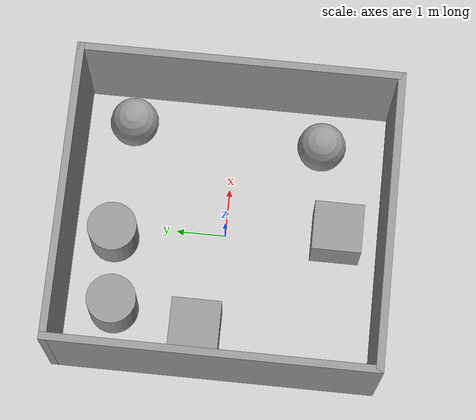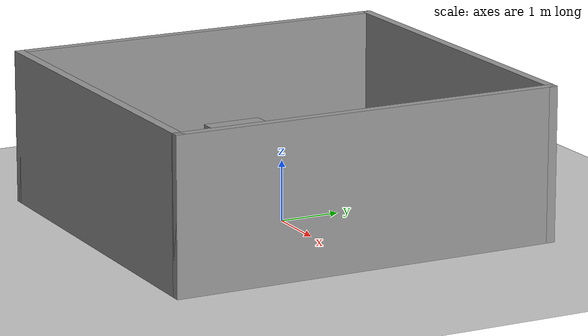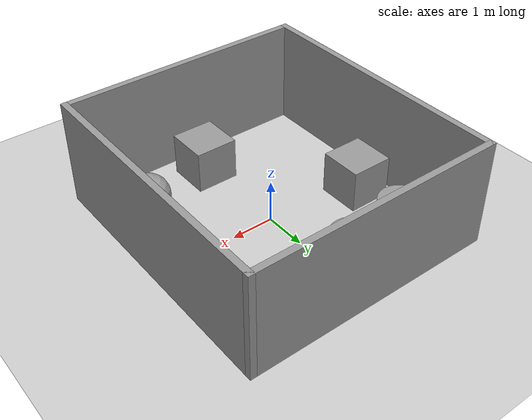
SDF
<sdf version="1.7">
 <world name="default">
  <light name="sun" type="directional">
   <pose>0 0 10 0 -0 0</pose>
   <diffuse>0.8 0.8 0.8 1</diffuse>
   <specular>0.2 0.2 0.2 1</specular>
   <attenuation>
    <range>1000</range>
    <constant>0.9</constant>
    <linear>0.01</linear>
    <quadratic>0.001</quadratic>
   </attenuation>
   <direction>-0.5 0.1 -0.9</direction>
   <spot><inner_angle>0</inner_angle><outer_angle>0</outer_angle><falloff>0</falloff></spot>
  </light>
  <model name="ground_plane">
   <static>1</static>
   <link name="link">
    <collision name="collision">
     <geometry><plane><normal>0 0 1</normal><size>100 100</size></plane></geometry>
     <surface>
      <contact><collide_bitmask>65535</collide_bitmask></contact>
      <friction><ode><mu>100</mu><mu2>50</mu2></ode></friction>
     </surface>
    </collision>
    <visual name="visual">
     <cast_shadows>0</cast_shadows>
     <geometry><plane><normal>0 0 1</normal><size>100 100</size></plane></geometry>
     <material>
      <script><uri>file://media/materials/scripts/gazebo.material</uri><name>Gazebo/Grey</name></script>
     </material>
    </visual>
   </link>
  </model>
  <gravity>0 0 -9.8</gravity>
  <magnetic_field>6e-06 2.3e-05 -4.2e-05</magnetic_field>
  <atmosphere type="adiabatic"/>
  <physics type="ode">
   <max_step_size>0.001</max_step_size>
   <real_time_factor>1</real_time_factor>
   <real_time_update_rate>1000</real_time_update_rate>
  </physics>
  <scene><ambient>0.4 0.4 0.4 1</ambient><background>0.7 0.7 0.7 1</background><shadows>1</shadows></scene>
  <spherical_coordinates>
   <surface_model>EARTH_WGS84</surface_model>
   <latitude_deg>0</latitude_deg>
   <longitude_deg>0</longitude_deg>
   <elevation>0</elevation>
   <heading_deg>0</heading_deg>
  </spherical_coordinates>
  <model name="wall_6m">
   <pose>-0.009013 -0.023796 0 0 -0 0</pose>
   <link name="Wall_0">
    <collision name="Wall_0_Collision">
     <geometry><box><size>6 0.15 2.5</size></box></geometry>
     <pose>0 0 1.25 0 -0 0</pose>
    </collision>
    <visual name="Wall_0_Visual">
     <pose>0 0 1.25 0 -0 0</pose>
     <geometry><box><size>6 0.15 2.5</size></box></geometry>
     <material>
      <script><uri>file://media/materials/scripts/gazebo.material</uri><name>Gazebo/Grey</name></script>
      <ambient>1 1 1 1</ambient>
     </material>
     <meta><layer>0</layer></meta>
    </visual>
    <pose>0 -3.175 0 0 -0 0</pose>
   </link>
   <link name="Wall_1">
    <collision name="Wall_1_Collision">
     <geometry><box><size>6.5 0.15 2.5</size></box></geometry>
     <pose>0 0 1.25 0 -0 0</pose>
    </collision>
    <visual name="Wall_1_Visual">
     <pose>0 0 1.25 0 -0 0</pose>
     <geometry><box><size>6.5 0.15 2.5</size></box></geometry>
     <material>
      <script><uri>file://media/materials/scripts/gazebo.material</uri><name>Gazebo/Grey</name></script>
      <ambient>1 1 1 1</ambient>
     </material>
     <meta><layer>0</layer></meta>
    </visual>
    <pose>2.925 0 0 0 -0 1.5708</pose>
   </link>
   <link name="Wall_2">
    <collision name="Wall_2_Collision">
     <geometry><box><size>6 0.15 2.5</size></box></geometry>
     <pose>0 0 1.25 0 -0 0</pose>
    </collision>
    <visual name="Wall_2_Visual">
     <pose>0 0 1.25 0 -0 0</pose>
     <geometry><box><size>6 0.15 2.5</size></box></geometry>
     <material>
      <script><uri>file://media/materials/scripts/gazebo.material</uri><name>Gazebo/Grey</name></script>
      <ambient>1 1 1 1</ambient>
     </material>
     <meta><layer>0</layer></meta>
    </visual>
    <pose>0 3.175 0 0 -0 3.14159</pose>
   </link>
   <link name="Wall_3">
    <collision name="Wall_3_Collision">
     <geometry><box><size>6.5 0.15 2.5</size></box></geometry>
     <pose>0 0 1.25 0 -0 0</pose>
    </collision>
    <visual name="Wall_3_Visual">
     <pose>0 0 1.25 0 -0 0</pose>
     <geometry><box><size>6.5 0.15 2.5</size></box></geometry>
     <material>
      <script><uri>file://media/materials/scripts/gazebo.material</uri><name>Gazebo/Grey</name></script>
      <ambient>1 1 1 1</ambient>
     </material>
     <meta><layer>0</layer></meta>
    </visual>
    <pose>-2.925 0 0 0 -0 -1.5708</pose>
   </link>
   <static>1</static>
  </model>
  <model name="unit_sphere">
   <pose>1.96069 -1.80334 0.5 0 -0 0</pose>
   <link name="link">
    <inertial>
     <mass>1</mass>
     <inertia><ixx>0.1</ixx><ixy>0</ixy><ixz>0</ixz><iyy>0.1</iyy><iyz>0</iyz><izz>0.1</izz></inertia>
    </inertial>
    <collision name="collision"><geometry><sphere><radius>0.5</radius></sphere></geometry></collision>
    <visual name="visual">
     <geometry><sphere><radius>0.5</radius></sphere></geometry>
     <material>
      <script><name>Gazebo/Grey</name><uri>file://media/materials/scripts/gazebo.material</uri></script>
     </material>
    </visual>
   </link>
  </model>
  <model name="unit_cylinder">
   <pose>-1.75969 2.09695 0.499992 -3e-06 -4e-06 -0</pose>
   <link name="link">
    <inertial>
     <mass>1</mass>
     <inertia><ixx>0.145833</ixx><ixy>0</ixy><ixz>0</ixz><iyy>0.145833</iyy><iyz>0</iyz><izz>0.125</izz></inertia>
    </inertial>
    <collision name="collision">
     <geometry><cylinder><radius>0.5</radius><length>1</length></cylinder></geometry>
    </collision>
    <visual name="visual">
     <geometry><cylinder><radius>0.5</radius><length>1</length></cylinder></geometry>
     <material>
      <script><name>Gazebo/Grey</name><uri>file://media/materials/scripts/gazebo.material</uri></script>
     </material>
    </visual>
   </link>
  </model>
  <model name="unit_cylinder_0">
   <pose>-0.279492 2.25691 0.499993 -3e-06 -3e-06 0</pose>
   <link name="link">
    <inertial>
     <mass>1</mass>
     <inertia><ixx>0.145833</ixx><ixy>0</ixy><ixz>0</ixz><iyy>0.145833</iyy><iyz>0</iyz><izz>0.125</izz></inertia>
    </inertial>
    <collision name="collision">
     <geometry><cylinder><radius>0.5</radius><length>1</length></cylinder></geometry>
    </collision>
    <visual name="visual">
     <geometry><cylinder><radius>0.5</radius><length>1</length></cylinder></geometry>
     <material>
      <script><name>Gazebo/Grey</name><uri>file://media/materials/scripts/gazebo.material</uri></script>
     </material>
    </visual>
   </link>
  </model>
  <model name="unit_box">
   <pose>0.160443 -2.26341 0.499995 0 1e-05 0</pose>
   <link name="link">
    <inertial>
     <mass>1</mass>
     <inertia>
      <ixx>0.166667</ixx>
      <ixy>0</ixy>
      <ixz>0</ixz>
      <iyy>0.166667</iyy>
      <iyz>0</iyz>
      <izz>0.166667</izz>
     </inertia>
    </inertial>
    <collision name="collision"><geometry><box><size>1 1 1</size></box></geometry></collision>
    <visual name="visual">
     <geometry><box><size>1 1 1</size></box></geometry>
     <material>
      <script><name>Gazebo/Grey</name><uri>file://media/materials/scripts/gazebo.material</uri></script>
     </material>
    </visual>
   </link>
  </model>
  <model name="unit_box_0">
   <pose>-2.09962 0.396758 0.499995 -1e-05 -0 0</pose>
   <link name="link">
    <inertial>
     <mass>1</mass>
     <inertia>
      <ixx>0.166667</ixx>
      <ixy>0</ixy>
      <ixz>0</ixz>
      <iyy>0.166667</iyy>
      <iyz>0</iyz>
      <izz>0.166667</izz>
     </inertia>
    </inertial>
    <collision name="collision"><geometry><box><size>1 1 1</size></box></geometry></collision>
    <visual name="visual">
     <geometry><box><size>1 1 1</size></box></geometry>
     <material>
      <script><name>Gazebo/Grey</name><uri>file://media/materials/scripts/gazebo.material</uri></script>
     </material>
    </visual>
   </link>
  </model>
  <model name="unit_sphere_0">
   <pose>2.12065 2.09695 0.5 0 -0 0</pose>
   <link name="link">
    <inertial>
     <mass>1</mass>
     <inertia><ixx>0.1</ixx><ixy>0</ixy><ixz>0</ixz><iyy>0.1</iyy><iyz>0</iyz><izz>0.1</izz></inertia>
    </inertial>
    <collision name="collision"><geometry><sphere><radius>0.5</radius></sphere></geometry></collision>
    <visual name="visual">
     <geometry><sphere><radius>0.5</radius></sphere></geometry>
     <material>
      <script><name>Gazebo/Grey</name><uri>file://media/materials/scripts/gazebo.material</uri></script>
     </material>
    </visual>
   </link>
  </model>
 </world>
</sdf>
